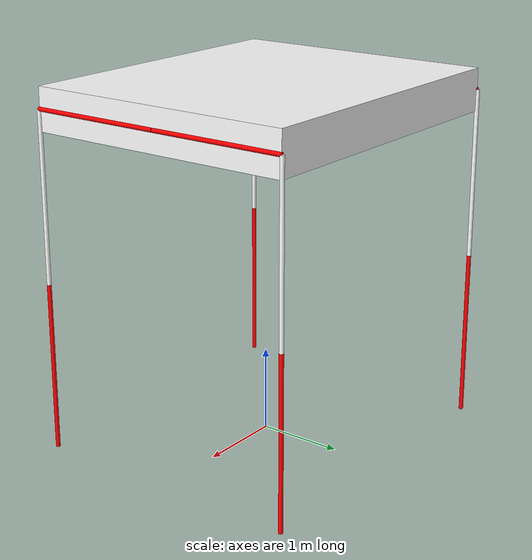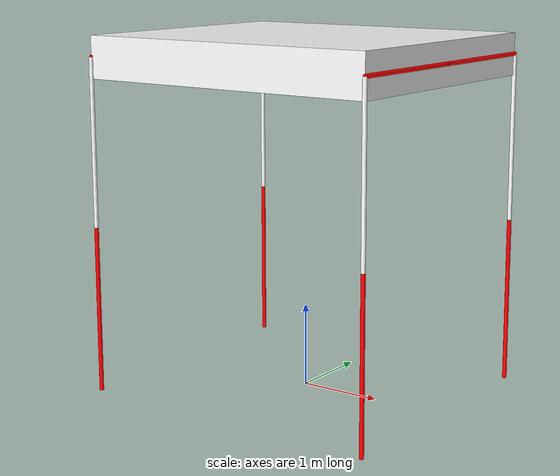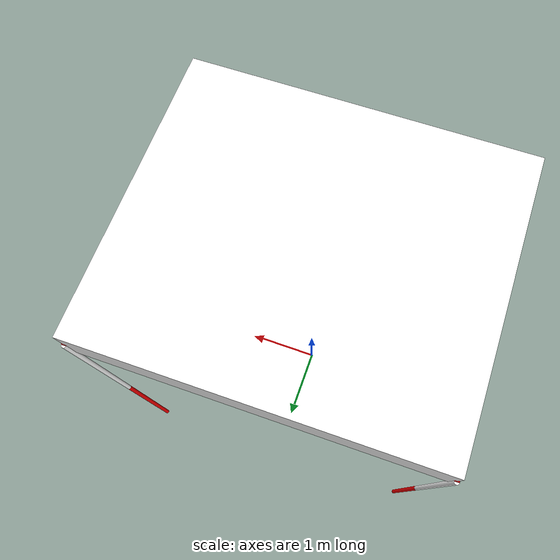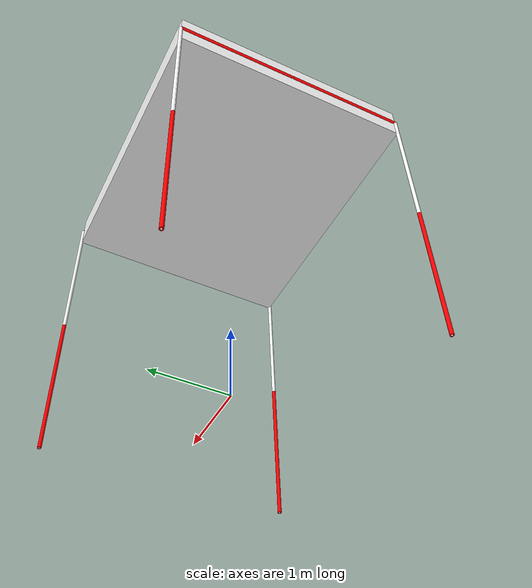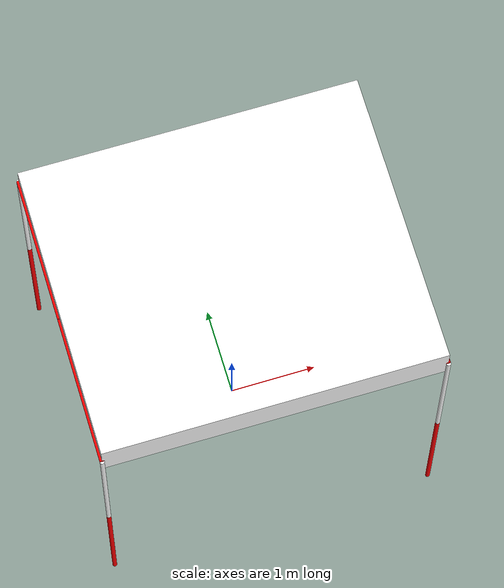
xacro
<?xml version="1.0"?>

<robot name="quadruped_9g" xmlns:xacro="http://ros.org/wiki/xacro">
    <xacro:property name="pi" value="3.1415" />

    <xacro:property name="shoul_len" value="1.6112" />
    <xacro:property name="thigh_len" value="2" />
    <xacro:property name="shank_len" value="2" />
    <xacro:property name="link_radius" value="0.025"/>
    <xacro:property name="feet_radius" value="0.01"/>

    <xacro:property name="body_len" value="3.74" />
    <xacro:property name="body_width" value="3.2224" />
    <xacro:property name="body_height" value="0.5" />

    <xacro:property name="z_body" value="${thigh_len + shank_len}" />

    <!-- Over here we include the file that defines extra Gazebo options and motion control driver -->

    <material name="red">
        <color rgba="1 0 0 1"/>
    </material>

    <material name="white">
        <color rgba="1 1 1 1"/>
    </material>

    <xacro:macro name="default_inertial" params="mass">
        <inertial>
            <mass value="${mass}" />
            <origin rpy="0 0 0" xyz="0 0 0" />
            <inertia ixx="1.0" ixy="0.0" ixz="0.0" iyy="1.0" iyz="0.0" izz="1.0" />
        </inertial>
    </xacro:macro>

    <link name="base_link">
    </link>
    <joint name="body_link_joint" type="fixed">
        <parent link="base_link"/>
        <child link="body_link"/>
    </joint>

    <link name="body_link">
        <visual>
            <geometry>
                <box size="${body_len} ${body_width} ${body_height}" />
            </geometry>
            <material name="white"/>
            <origin rpy="0 0 0" xyz="0 0 ${z_body }" />
        </visual>

        <collision>
            <geometry>
                <box size="${body_len} ${body_width} ${body_height}" />
            </geometry>
            <origin rpy="0 0 0" xyz="0 0 0" />
        </collision>
        <!-- ${shoul_len + thigh_len + shank_len} -->
        <xacro:default_inertial mass="10" />
    </link>

    <xacro:macro name="leg" params="suffix front left">
        <link name="shoulder_link_${suffix}">
            <visual>
                <geometry>
                    <cylinder length="${shoul_len}" radius="${link_radius}"/>
                </geometry>
                <origin rpy="${pi*0.5} 0 0" xyz="0 ${0.5*left*shoul_len} ${z_body}"/>
                <material name="red"/>
            </visual>
            <xacro:default_inertial mass="2"/>
        </link>
        <joint name="shoulder_joint_${suffix}" type="revolute">
            <axis xyz="1 0 0"/>
            <limit effort="1000.0" lower="${-0.5*pi}" upper="${0.5*pi}" velocity="0.5"/>
            <parent link="body_link"/>
            <child link="shoulder_link_${suffix}"/>
            <origin xyz="${0.5*body_len*front} ${left*0.005}  0"/>
        </joint>

        <link name="thigh_link_${suffix}">
            <visual>
                <geometry>
                    <cylinder length="${thigh_len}" radius="${link_radius}"/>
                </geometry>
                <origin rpy="0 0 0" xyz="0 0 ${z_body - thigh_len/2}" />
                <material name="white"/>
            </visual>
            <xacro:default_inertial mass="2"/>
        </link>
        <joint name="elbow_joint_${suffix}" type="revolute">
            <axis xyz="0 1 0"/>
            <limit effort="1000.0" lower="${-0.5*pi}" upper="${0.5*pi}" velocity="0.5"/>
            <parent link="shoulder_link_${suffix}"/>
            <child link="thigh_link_${suffix}"/>
            <origin xyz="0 ${left*shoul_len} 0" />
        </joint>

        <link name="shank_link_${suffix}">
            <visual>
                <geometry>
                    <cylinder length="${shank_len}" radius="${link_radius}"/>
                </geometry>
                <origin rpy="0 0 0" xyz="0 0 ${shank_len/2}"/>
                <material name="red"/>
            </visual>
            <xacro:default_inertial mass="2"/>
        </link>
        <joint name="wrist_joint_${suffix}" type="revolute">
            <axis xyz="0 1 0"/>
            <limit effort="1000.0" lower="${-0.5*pi}" upper="0.0" velocity="0.5"/>
            <parent link="thigh_link_${suffix}"/>
            <child link="shank_link_${suffix}"/>
            <origin xyz="0 0 0"/>
        </joint>

        <link name="feet_link_${suffix}">
            <visual>
                <geometry>
                    <sphere radius="${feet_radius}"/>
                </geometry>
                <origin rpy="0 0 0" xyz="0 0 0"/>
                <material name="white"/>
            </visual>
            <xacro:default_inertial mass="0.2"/>
        </link>
        <joint name="ankle_joint_${suffix}" type="fixed">
            <axis xyz="0 1 0"/>
            <limit effort="1000.0" lower="${-0.5*pi}" upper="${0.5*pi}" velocity="0.5"/>
            <parent link="shank_link_${suffix}"/>
            <child link="feet_link_${suffix}"/>
            <origin xyz="0 0 0"/>
        </joint>

    </xacro:macro>

    <xacro:leg suffix="lf" front="1" left="1" />
    <xacro:leg suffix="rf" front="1" left="-1" />
    <xacro:leg suffix="lb" front="-1" left="1" />
    <xacro:leg suffix="rb" front="-1" left="-1" />

    <!-- ROS control plugin -->
    <gazebo>
        <plugin name="gazebo_ros2_control" filename="libgazebo_ros2_control.so">
            <robotNamespace>robotDog_controller</robotNamespace>
        </plugin>
    </gazebo>

    <!-- IMU sesnsor -->
    <gazebo reference="base_link">
        <gravity>true</gravity>
        <sensor name="imu_sensor" type="imu">
            <always_on>true</always_on>
            <update_rate>100</update_rate>
            <visualizae>true</visualizae>
            <topic>__default_topic__</topic>
            <plugin filename="libgazebo_ros_imu_sensor.so" name="imu_plugin">
                <topicName>robotDog_imu/base_link_orientation</topicName>
                <bodyName>imu_link</bodyName>
                <updateRateHz>15.0</updateRateHz>
                <gaussianNoise>0.0</gaussianNoise>
                <xyzOffset>0 0 0</xyzOffset>
                <rpyOffset>0 0 0</rpyOffset>
                <frameName>base_link</frameName>
                <initialOrientationAsReference>false</initialOrientationAsReference>
            </plugin>
            <pose>0 0 0 0 0 0</pose>
        </sensor>
    </gazebo>

    <!-- Joint state publisher plugin -->
    <gazebo>
        <plugin filename="gz-sim-joint-state-publisher-system"
                name="gz::sim::systems::JointStatePublisher">
            <robotNamespace>robotDog_gazebo</robotNamespace>
            <jointName> shoulder_joint_lf, elbow_joint_lf, wrist_joint_lf,
                        shoulder_joint_rf, elbow_joint_rf, wrist_joint_rf,
                        shoulder_joint_lb, elbow_joint_lb, wrist_joint_lb,
                        shoulder_joint_rb, elbow_joint_rb, wrist_joint_rb
            </jointName>
            <updateRate>100</updateRate>
            <topic>joint_states</topic>
        </plugin>
    </gazebo>

    <!-- Transmission -->
    <transmission name="trans1">
        <type>transmission_interface/SimpleTransmission</type>
        <joint name="shoulder_joint_lf">
            <hardwareInterface>hardware_interface/EffortJointInterface</hardwareInterface>
        </joint>
        <actuator name="motor1">
            <hardwareInterface>hardware_interface/EffortJointInterface</hardwareInterface>
            <mechanicalReduction>5</mechanicalReduction>
        </actuator>
    </transmission>

    <transmission name="trans2">
        <type>transmission_interface/SimpleTransmission</type>
        <joint name="elbow_joint_lf">
            <hardwareInterface>hardware_interface/EffortJointInterface</hardwareInterface>
        </joint>
        <actuator name="motor2">
            <hardwareInterface>hardware_interface/EffortJointInterface</hardwareInterface>
            <mechanicalReduction>5</mechanicalReduction>
        </actuator>
    </transmission>

    <transmission name="trans3">
        <type>transmission_interface/SimpleTransmission</type>
        <joint name="wrist_joint_lf">
            <hardwareInterface>hardware_interface/EffortJointInterface</hardwareInterface>
        </joint>
        <actuator name="motor3">
            <hardwareInterface>hardware_interface/EffortJointInterface</hardwareInterface>
            <mechanicalReduction>5</mechanicalReduction>
        </actuator>
    </transmission>

    <transmission name="trans4">
        <type>transmission_interface/SimpleTransmission</type>
        <joint name="shoulder_joint_rf">
            <hardwareInterface>hardware_interface/EffortJointInterface</hardwareInterface>
        </joint>
        <actuator name="motor4">
            <hardwareInterface>hardware_interface/EffortJointInterface</hardwareInterface>
            <mechanicalReduction>5</mechanicalReduction>
        </actuator>
    </transmission>

    <transmission name="trans5">
        <type>transmission_interface/SimpleTransmission</type>
        <joint name="elbow_joint_rf">
            <hardwareInterface>hardware_interface/EffortJointInterface</hardwareInterface>
        </joint>
        <actuator name="motor5">
            <hardwareInterface>hardware_interface/EffortJointInterface</hardwareInterface>
            <mechanicalReduction>5</mechanicalReduction>
        </actuator>
    </transmission>

    <transmission name="trans6">
        <type>transmission_interface/SimpleTransmission</type>
        <joint name="wrist_joint_rf">
            <hardwareInterface>hardware_interface/EffortJointInterface</hardwareInterface>
        </joint>
        <actuator name="motor6">
            <hardwareInterface>hardware_interface/EffortJointInterface</hardwareInterface>
            <mechanicalReduction>5</mechanicalReduction>
        </actuator>
    </transmission>

    <transmission name="trans7">
        <type>transmission_interface/SimpleTransmission</type>
        <joint name="shoulder_joint_lb">
            <hardwareInterface>hardware_interface/EffortJointInterface</hardwareInterface>
        </joint>
        <actuator name="motor7">
            <hardwareInterface>hardware_interface/EffortJointInterface</hardwareInterface>
            <mechanicalReduction>5</mechanicalReduction>
        </actuator>
    </transmission>

    <transmission name="trans8">
        <type>transmission_interface/SimpleTransmission</type>
        <joint name="elbow_joint_lb">
            <hardwareInterface>hardware_interface/EffortJointInterface</hardwareInterface>
        </joint>
        <actuator name="motor8">
            <hardwareInterface>hardware_interface/EffortJointInterface</hardwareInterface>
            <mechanicalReduction>5</mechanicalReduction>
        </actuator>
    </transmission>

    <transmission name="trans9">
        <type>transmission_interface/SimpleTransmission</type>
        <joint name="wrist_joint_lb">
            <hardwareInterface>hardware_interface/EffortJointInterface</hardwareInterface>
        </joint>
        <actuator name="motor9">
            <hardwareInterface>hardware_interface/EffortJointInterface</hardwareInterface>
            <mechanicalReduction>5</mechanicalReduction>
        </actuator>
    </transmission>

    <transmission name="trans10">
        <type>transmission_interface/SimpleTransmission</type>
        <joint name="shoulder_joint_rb">
            <hardwareInterface>hardware_interface/EffortJointInterface</hardwareInterface>
        </joint>
        <actuator name="motor10">
            <hardwareInterface>hardware_interface/EffortJointInterface</hardwareInterface>
            <mechanicalReduction>5</mechanicalReduction>
        </actuator>
    </transmission>

    <transmission name="trans11">
        <type>transmission_interface/SimpleTransmission</type>
        <joint name="elbow_joint_rb">
            <hardwareInterface>hardware_interface/EffortJointInterface</hardwareInterface>
        </joint>
        <actuator name="motor11">
            <hardwareInterface>hardware_interface/EffortJointInterface</hardwareInterface>
            <mechanicalReduction>5</mechanicalReduction>
        </actuator>
    </transmission>

    <transmission name="trans12">
        <type>transmission_interface/SimpleTransmission</type>
        <joint name="wrist_joint_rb">
            <hardwareInterface>hardware_interface/EffortJointInterface</hardwareInterface>
        </joint>
        <actuator name="motor12">
            <hardwareInterface>hardware_interface/EffortJointInterface</hardwareInterface>
            <mechanicalReduction>5</mechanicalReduction>
        </actuator>
    </transmission>

    <!-- Feet_lf friction -->
    <gazebo reference="feet_link_lf">
        <mu1>1.0</mu1>
        <mu2>1.0</mu2>
        <minDepth>0.0002</minDepth>
        <kp value="1000000.0"/>
        <kd value="100.0"/>
    </gazebo>

    <!-- Feet_rf friction -->
    <gazebo reference="feet_link_rf">
        <mu1>1.0</mu1>
        <mu2>1.0</mu2>
        <minDepth>0.0002</minDepth>
        <kp value="1000000.0"/>
        <kd value="100.0"/>
    </gazebo>

    <!-- Feet_lb friction -->
    <gazebo reference="feet_link_lb">
        <mu1>1.0</mu1>
        <mu2>1.0</mu2>
        <minDepth>0.0002</minDepth>
        <kp value="1000000.0"/>
        <kd value="100.0"/>
    </gazebo>

    <!-- Feet_rb friction -->
    <gazebo reference="feet_link_rb">
        <mu1>1.0</mu1>
        <mu2>1.0</mu2>
        <minDepth>0.0002</minDepth>
        <kp value="1000000.0"/>
        <kd value="100.0"/>
    </gazebo>

</robot>
